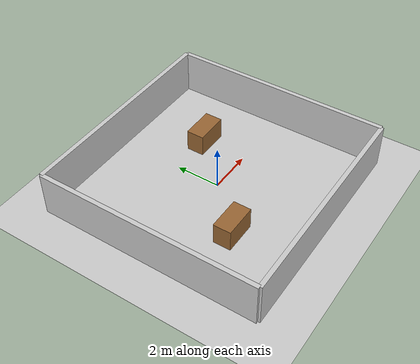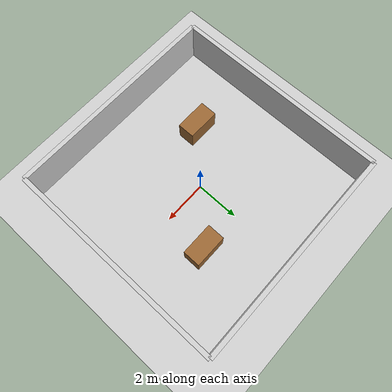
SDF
<?xml version="1.0" ?>
<sdf version="1.6">
  <world name="office_world">
    <include>
      <uri>model://ground_plane</uri>
    </include>

    <include>
      <uri>model://sun</uri>
    </include>

    <!-- Office walls -->
    <model name="wall_1">
      <static>true</static>
      <link name="link">
        <pose>5 0 1 0 0 0</pose>
        <collision name="collision">
          <geometry>
            <box>
              <size>0.2 10 2</size>
            </box>
          </geometry>
        </collision>
        <visual name="visual">
          <geometry>
            <box>
              <size>0.2 10 2</size>
            </box>
          </geometry>
          <material>
            <ambient>0.8 0.8 0.8 1</ambient>
          </material>
        </visual>
      </link>
    </model>

    <model name="wall_2">
      <static>true</static>
      <link name="link">
        <pose>-5 0 1 0 0 0</pose>
        <collision name="collision">
          <geometry>
            <box>
              <size>0.2 10 2</size>
            </box>
          </geometry>
        </collision>
        <visual name="visual">
          <geometry>
            <box>
              <size>0.2 10 2</size>
            </box>
          </geometry>
          <material>
            <ambient>0.8 0.8 0.8 1</ambient>
          </material>
        </visual>
      </link>
    </model>

    <model name="wall_3">
      <static>true</static>
      <link name="link">
        <pose>0 5 1 0 0 0</pose>
        <collision name="collision">
          <geometry>
            <box>
              <size>10 0.2 2</size>
            </box>
          </geometry>
        </collision>
        <visual name="visual">
          <geometry>
            <box>
              <size>10 0.2 2</size>
            </box>
          </geometry>
          <material>
            <ambient>0.8 0.8 0.8 1</ambient>
          </material>
        </visual>
      </link>
    </model>

    <model name="wall_4">
      <static>true</static>
      <link name="link">
        <pose>0 -5 1 0 0 0</pose>
        <collision name="collision">
          <geometry>
            <box>
              <size>10 0.2 2</size>
            </box>
          </geometry>
        </collision>
        <visual name="visual">
          <geometry>
            <box>
              <size>10 0.2 2</size>
            </box>
          </geometry>
          <material>
            <ambient>0.8 0.8 0.8 1</ambient>
          </material>
        </visual>
      </link>
    </model>

    <!-- Office furniture -->
    <model name="desk_1">
      <static>true</static>
      <link name="link">
        <pose>2 2 0.5 0 0 0</pose>
        <collision name="collision">
          <geometry>
            <box>
              <size>1.5 0.8 1</size>
            </box>
          </geometry>
        </collision>
        <visual name="visual">
          <geometry>
            <box>
              <size>1.5 0.8 1</size>
            </box>
          </geometry>
          <material>
            <ambient>0.6 0.4 0.2 1</ambient>
          </material>
        </visual>
      </link>
    </model>

    <model name="desk_2">
      <static>true</static>
      <link name="link">
        <pose>-2 -2 0.5 0 0 0</pose>
        <collision name="collision">
          <geometry>
            <box>
              <size>1.5 0.8 1</size>
            </box>
          </geometry>
        </collision>
        <visual name="visual">
          <geometry>
            <box>
              <size>1.5 0.8 1</size>
            </box>
          </geometry>
          <material>
            <ambient>0.6 0.4 0.2 1</ambient>
          </material>
        </visual>
      </link>
    </model>

    <!-- Physics -->
    <physics name="default_physics" default="0" type="ode">
      <gravity>0 0 -9.8066</gravity>
      <ode>
        <solver>
          <type>quick</type>
          <iters>10</iters>
          <sor>1.3</sor>
        </solver>
        <constraints>
          <cfm>0.0</cfm>
          <erp>0.2</erp>
          <contact_max_correcting_vel>100.0</contact_max_correcting_vel>
          <contact_surface_layer>0.001</contact_surface_layer>
        </constraints>
      </ode>
      <max_step_size>0.004</max_step_size>
      <real_time_factor>1</real_time_factor>
      <real_time_update_rate>250</real_time_update_rate>
    </physics>
  </world>
</sdf>
